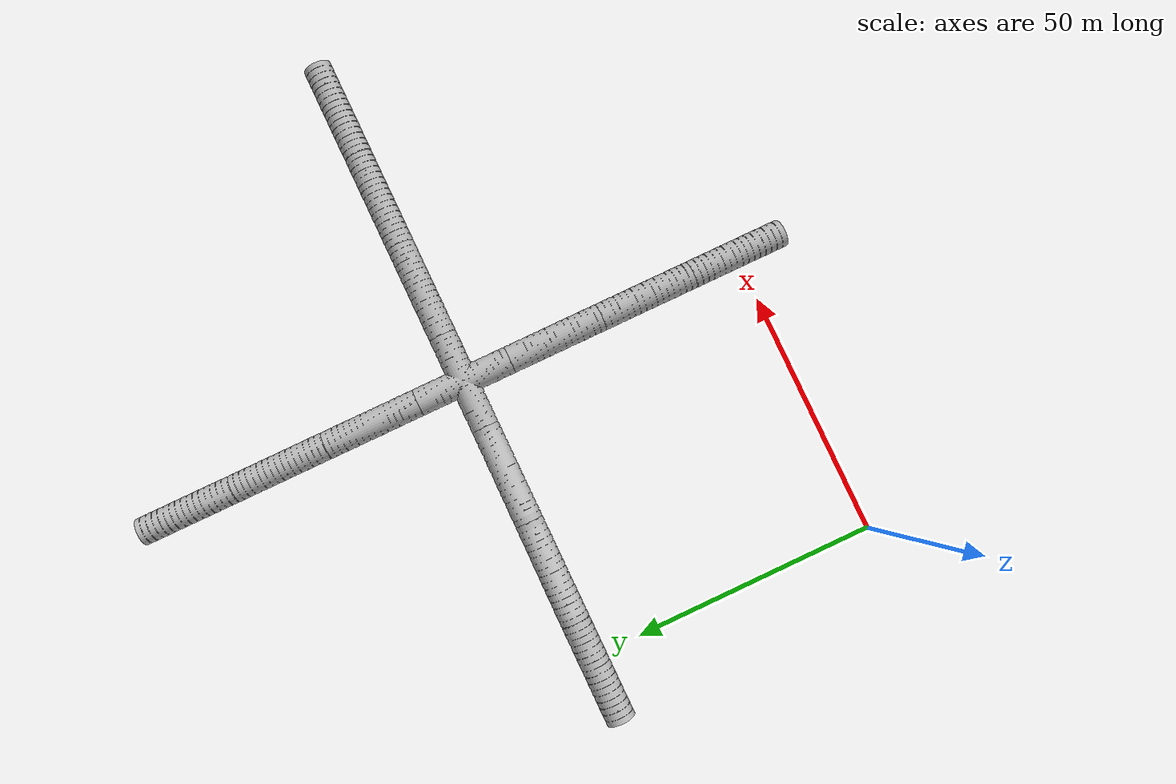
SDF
<?xml version="1.0" ?>
<sdf version="1.6">
  <world name="default">

    <include>
      <name>tile_0</name>
      <uri>model://tunnel_tile_5</uri>
      <pose>60.000000 0.000000 0.000000 0 0 0.000000</pose>
    </include>

    <include>
      <name>tile_1</name>
      <uri>model://tunnel_tile_5</uri>
      <pose>60.000000 20.000000 0.000000 0 0 0.000000</pose>
    </include>

    <include>
      <name>tile_2</name>
      <uri>model://tunnel_tile_5</uri>
      <pose>60.000000 40.000000 0.000000 0 0 0.000000</pose>
    </include>

    <include>
      <name>tile_3</name>
      <uri>model://tunnel_tile_5</uri>
      <pose>0.000000 60.000000 10.000000 0 0 1.570796</pose>
    </include>

    <include>
      <name>tile_4</name>
      <uri>model://tunnel_tile_6</uri>
      <pose>20.000000 60.000000 5.000000 0 0 1.570796</pose>
    </include>

    <include>
      <name>tile_5</name>
      <uri>model://tunnel_tile_6</uri>
      <pose>40.000000 60.000000 0.000000 0 0 1.570796</pose>
    </include>

    <include>
      <name>tile_6</name>
      <uri>model://tunnel_tile_1</uri>
      <pose>60.000000 60.000000 0.000000 0 0 0.000000</pose>
    </include>

    <include>
      <name>tile_7</name>
      <uri>model://tunnel_tile_5</uri>
      <pose>80.000000 60.000000 0.000000 0 0 1.570796</pose>
    </include>

    <include>
      <name>tile_8</name>
      <uri>model://tunnel_tile_5</uri>
      <pose>100.000000 60.000000 0.000000 0 0 1.570796</pose>
    </include>

    <include>
      <name>tile_9</name>
      <uri>model://tunnel_tile_5</uri>
      <pose>120.000000 60.000000 0.000000 0 0 1.570796</pose>
    </include>

    <include>
      <name>tile_10</name>
      <uri>model://tunnel_tile_5</uri>
      <pose>60.000000 80.000000 0.000000 0 0 0.000000</pose>
    </include>

    <include>
      <name>tile_11</name>
      <uri>model://tunnel_tile_5</uri>
      <pose>60.000000 100.000000 0.000000 0 0 0.000000</pose>
    </include>

    <include>
      <name>tile_12</name>
      <uri>model://tunnel_tile_5</uri>
      <pose>60.000000 120.000000 0.000000 0 0 0.000000</pose>
    </include>

  </world>
</sdf>

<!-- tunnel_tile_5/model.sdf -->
<sdf version="1.6">
  <model name="tunnel_tile_5">
    <static>true</static>
    <link name="link">
      <collision name="collision">
        <geometry>
          <mesh>
            <uri>model://tunnel_tile_5/meshes/tunnel_tile_5.dae</uri>
          </mesh>
        </geometry>
      </collision>
      <collision name="collision_ground">
        <geometry>
          <box>
            <size>5 20 0.001</size>
          </box>
        </geometry>
      </collision>
      <visual name="visual">
        <geometry>
          <mesh>
            <uri>model://tunnel_tile_5/meshes/tunnel_tile_5.dae</uri>
          </mesh>
        </geometry>
      </visual>
    </link>
  </model>
</sdf>

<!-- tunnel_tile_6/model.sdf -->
<sdf version="1.6">
  <model name="tunnel_tile_6">
    <static>true</static>
    <link name="link">
      <pose>0 0 0 0 0 0</pose>
      <collision name="collision">
        <geometry>
          <mesh>
            <uri>model://tunnel_tile_6/meshes/tunnel_tile_6.dae</uri>
          </mesh>
        </geometry>
      </collision>

      <collision name="collision_ground_1">
        <pose>0 9.323 5 0 0 0</pose>
        <geometry>
          <box>
            <size>6.356 1.354 0.001</size>
          </box>
        </geometry>
      </collision>

      <collision name="collision_ground_2">
        <pose>0 -0.070 2.467 0.2827433 0 0</pose>
        <geometry>
          <box>
            <size>6.356 18.152 0.001</size>
          </box>
        </geometry>
      </collision>

      <collision name="collision_ground_3">
        <pose>0 -9.272 0 0 0 0</pose>
        <geometry>
          <box>
            <size>6.356 1.455 0.001</size>
          </box>
        </geometry>
      </collision>

      <visual name="visual">
        <geometry>
          <mesh>
            <uri>model://tunnel_tile_6/meshes/tunnel_tile_6.dae</uri>
          </mesh>
        </geometry>
      </visual>
    </link>
  </model>
</sdf>

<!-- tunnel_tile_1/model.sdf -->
<sdf version="1.6">
  <model name="tunnel_tile_1">
    <static>true</static>
    <link name="link">
      <collision name="collision">
        <geometry>
          <mesh>
            <uri>model://tunnel_tile_1/meshes/tunnel_tile_1.dae</uri>
          </mesh>
        </geometry>
      </collision>
      <collision name="collision_ground">
        <geometry>
          <box>
            <size>20 20 0.001</size>
          </box>
        </geometry>
      </collision>
      <visual name="visual">
        <geometry>
          <mesh>
            <uri>model://tunnel_tile_1/meshes/tunnel_tile_1.dae</uri>
          </mesh>
        </geometry>
      </visual>
    </link>
  </model>
</sdf>
